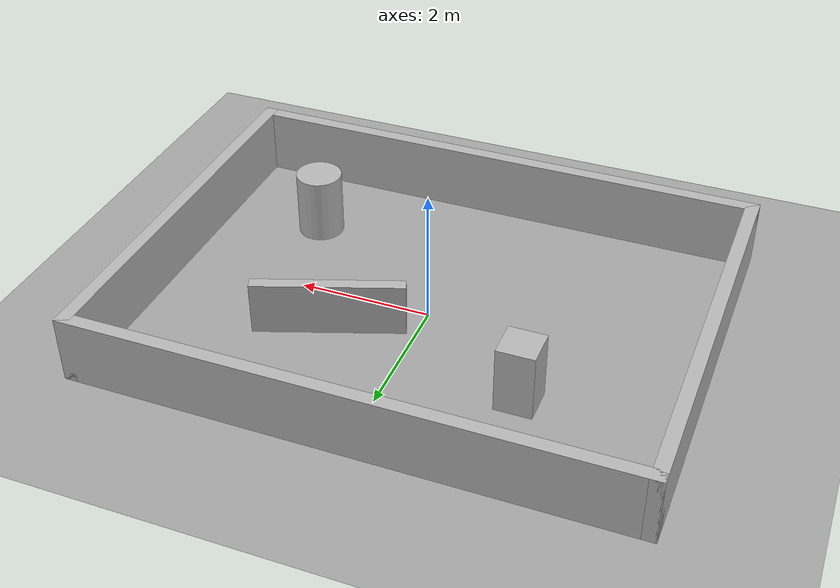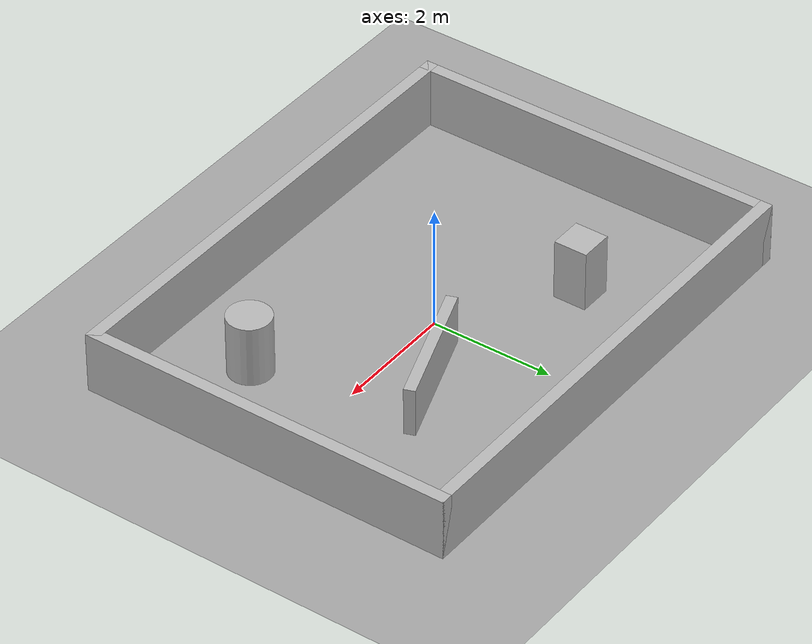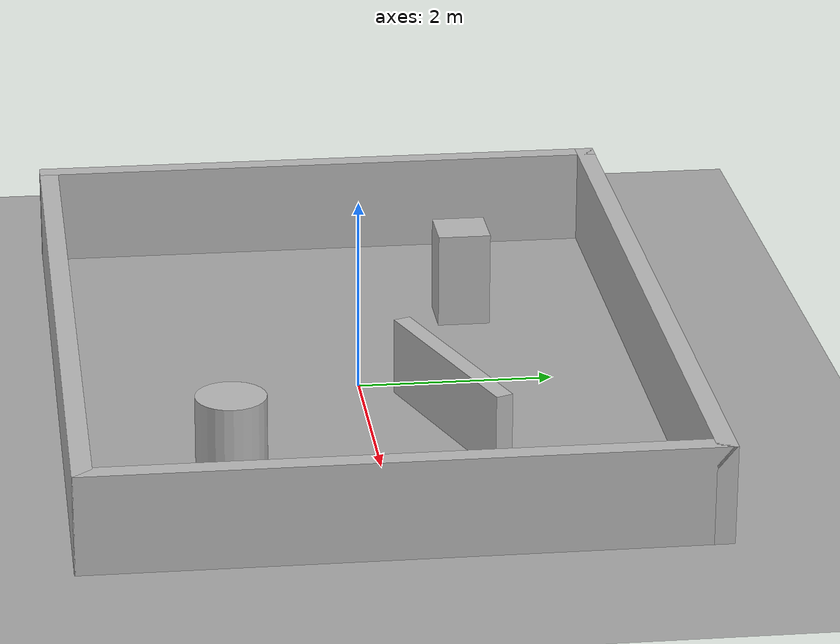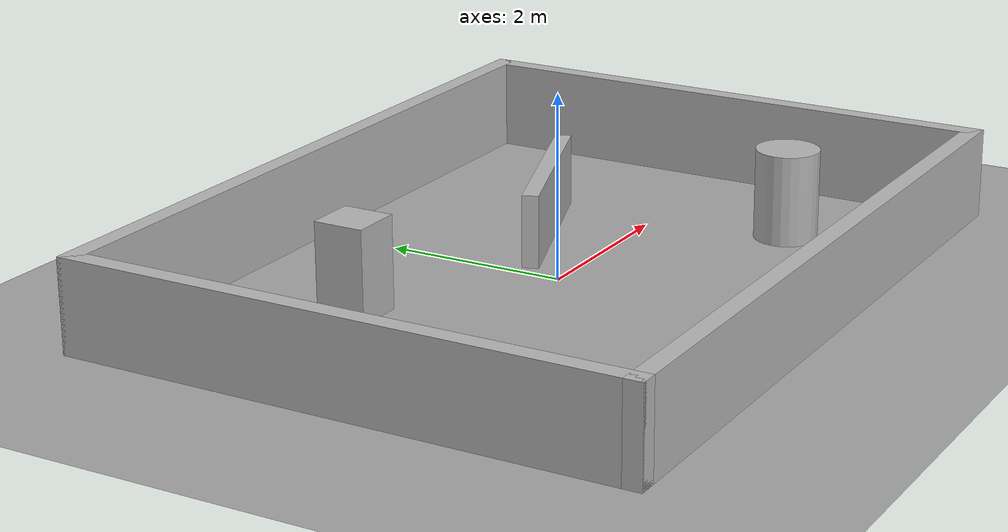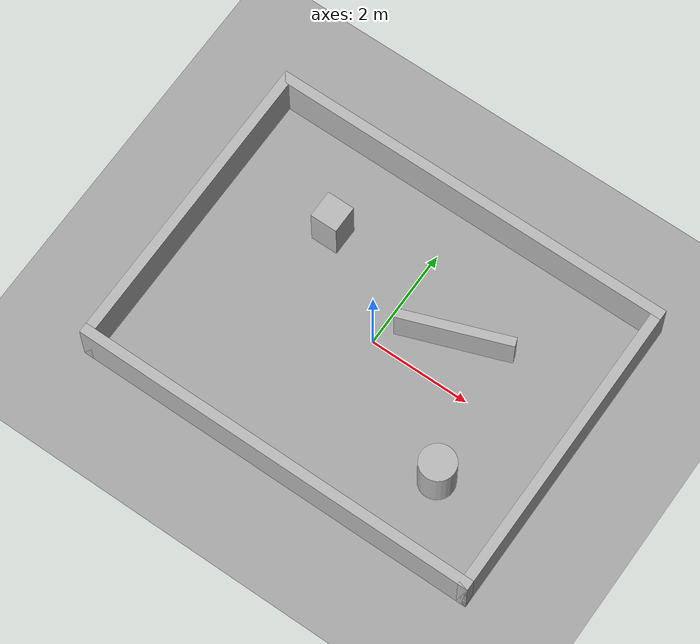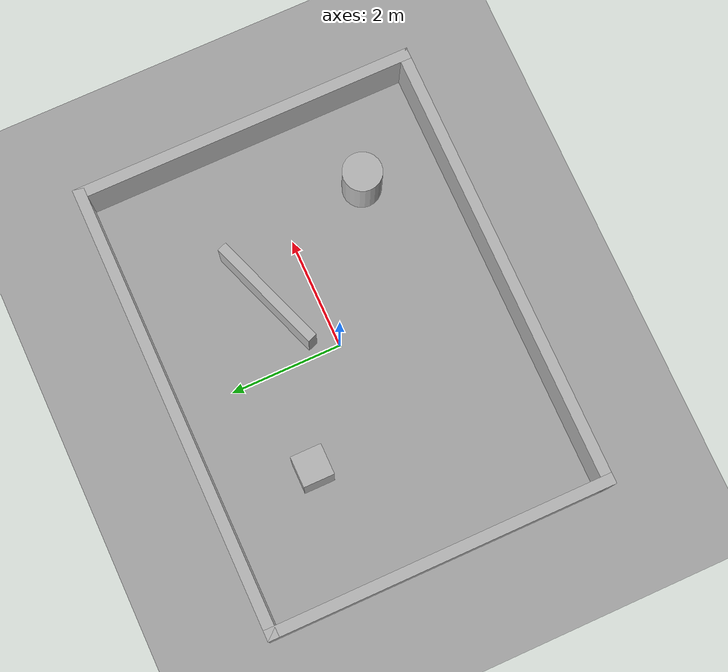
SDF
<?xml version="1.0"?>
<sdf version="1.9">
  <world name="rtk2026_slam_world">
    <physics name="default_physics" type="ignored">
      <max_step_size>0.001</max_step_size>
      <real_time_factor>1.0</real_time_factor>
    </physics>

    <!-- Базовые системы Gazebo Harmonic. -->
    <plugin filename="gz-sim-physics-system" name="gz::sim::systems::Physics"/>
    <plugin filename="gz-sim-user-commands-system" name="gz::sim::systems::UserCommands"/>
    <plugin filename="gz-sim-scene-broadcaster-system" name="gz::sim::systems::SceneBroadcaster"/>
    <plugin filename="gz-sim-sensors-system" name="gz::sim::systems::Sensors">
      <render_engine>ogre2</render_engine>
    </plugin>
    <!-- Обновляет IMU sensors, добавленные к моделям роботов. -->
    <plugin filename="gz-sim-imu-system" name="gz::sim::systems::Imu"/>

    <scene>
      <ambient>0.4 0.4 0.4 1</ambient>
      <background>0.7 0.7 0.7 1</background>
      <shadows>true</shadows>
    </scene>

    <light name="sun" type="directional">
      <cast_shadows>true</cast_shadows>
      <pose>0 0 10 0 0 0</pose>
      <diffuse>0.8 0.8 0.8 1</diffuse>
      <specular>0.2 0.2 0.2 1</specular>
      <direction>-0.5 0.1 -0.9</direction>
    </light>

    <!-- Плоскость пола. -->
    <model name="ground_plane">
      <static>true</static>
      <link name="ground_link">
        <collision name="ground_collision">
          <geometry><plane><normal>0 0 1</normal><size>20 20</size></plane></geometry>
          <surface>
            <friction><ode><mu>1.0</mu><mu2>1.0</mu2></ode></friction>
          </surface>
        </collision>
        <visual name="ground_visual">
          <geometry><plane><normal>0 0 1</normal><size>20 20</size></plane></geometry>
          <material><ambient>0.65 0.65 0.65 1</ambient><diffuse>0.65 0.65 0.65 1</diffuse></material>
        </visual>
      </link>
    </model>

    <!-- Северная и южная стены помещения. -->
    <model name="north_wall">
      <static>true</static>
      <pose>0 3 0.5 0 0 0</pose>
      <link name="wall_link">
        <collision name="collision"><geometry><box><size>8.2 0.2 1.0</size></box></geometry></collision>
        <visual name="visual"><geometry><box><size>8.2 0.2 1.0</size></box></geometry></visual>
      </link>
    </model>
    <model name="south_wall">
      <static>true</static>
      <pose>0 -3 0.5 0 0 0</pose>
      <link name="wall_link">
        <collision name="collision"><geometry><box><size>8.2 0.2 1.0</size></box></geometry></collision>
        <visual name="visual"><geometry><box><size>8.2 0.2 1.0</size></box></geometry></visual>
      </link>
    </model>

    <!-- Западная и восточная стены помещения. -->
    <model name="west_wall">
      <static>true</static>
      <pose>-4 0 0.5 0 0 0</pose>
      <link name="wall_link">
        <collision name="collision"><geometry><box><size>0.2 6.2 1.0</size></box></geometry></collision>
        <visual name="visual"><geometry><box><size>0.2 6.2 1.0</size></box></geometry></visual>
      </link>
    </model>
    <model name="east_wall">
      <static>true</static>
      <pose>4 0 0.5 0 0 0</pose>
      <link name="wall_link">
        <collision name="collision"><geometry><box><size>0.2 6.2 1.0</size></box></geometry></collision>
        <visual name="visual"><geometry><box><size>0.2 6.2 1.0</size></box></geometry></visual>
      </link>
    </model>

    <!-- Несимметричные внутренние ориентиры для лидара. -->
    <model name="long_partition">
      <static>true</static>
      <pose>1.2 0.8 0.4 0 0 0.35</pose>
      <link name="partition_link">
        <collision name="collision"><geometry><box><size>2.2 0.18 0.8</size></box></geometry></collision>
        <visual name="visual"><geometry><box><size>2.2 0.18 0.8</size></box></geometry></visual>
      </link>
    </model>

    <model name="square_column">
      <static>true</static>
      <pose>-1.8 1.3 0.5 0 0 0</pose>
      <link name="column_link">
        <collision name="collision"><geometry><box><size>0.55 0.55 1.0</size></box></geometry></collision>
        <visual name="visual"><geometry><box><size>0.55 0.55 1.0</size></box></geometry></visual>
      </link>
    </model>

    <model name="round_column">
      <static>true</static>
      <pose>2.4 -1.5 0.5 0 0 0</pose>
      <link name="column_link">
        <collision name="collision"><geometry><cylinder><radius>0.35</radius><length>1.0</length></cylinder></geometry></collision>
        <visual name="visual"><geometry><cylinder><radius>0.35</radius><length>1.0</length></cylinder></geometry></visual>
      </link>
    </model>
  </world>
</sdf>
